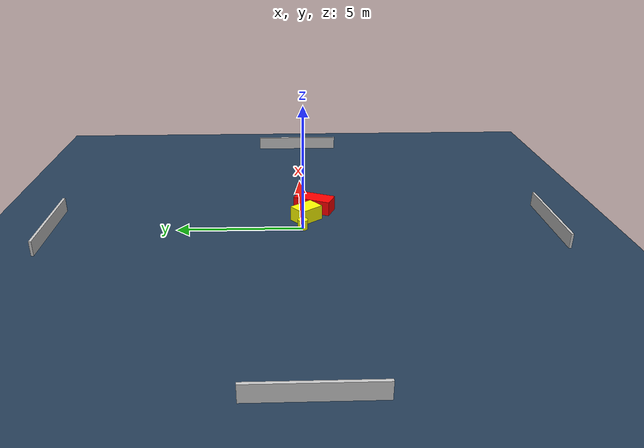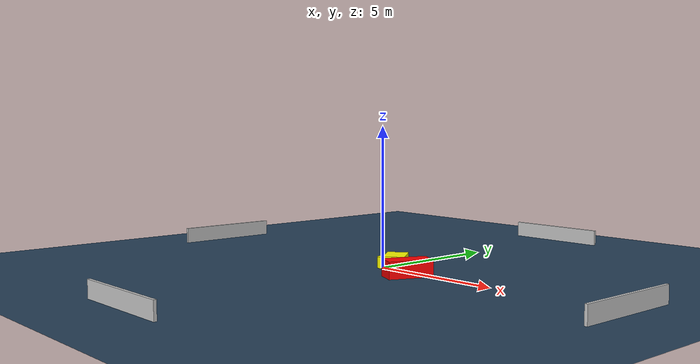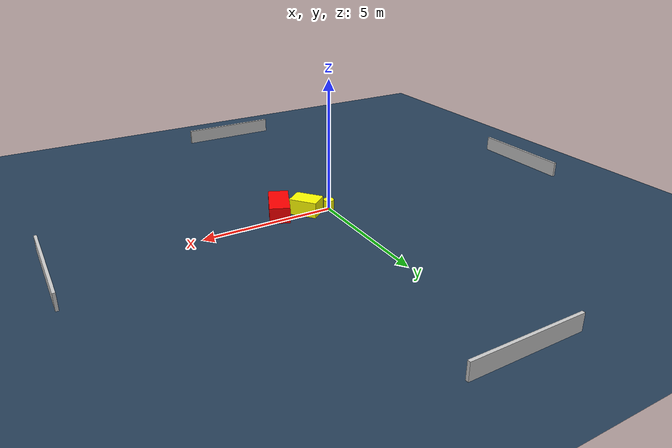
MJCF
<?xml version="1.0" ?>
<mujoco model="generated_environment">
  <option timestep="0.01" integrator="RK4" cone="elliptic"/>
  <default>
    <geom density="1"/>
  </default>
  <asset>
    <texture builtin="gradient" height="3072" name="skybox" rgb1="0.3 0.5 0.7" rgb2="0 0 0" type="skybox" width="512"/>
    <texture builtin="checker" height="300" name="groundplane" rgb1="0.2 0.3 0.4" rgb2="0.1 0.2 0.3" type="2d" width="300"/>
    <material name="groundplane" reflectance="0.2" texrepeat="5 5" texture="groundplane"/>
  </asset>
  <worldbody>
    <light dir="0 0 -1" directional="true" pos="0 0 1.5"/>
    <geom condim="3" friction="0.5 0.005 0.001" material="groundplane" name="floor" pos="0 0 0" size="0 0 0.05" type="plane"/>
    <body name="walls">
      <geom name="wall_1" condim="4" pos="-10.0 0.0 0.3" rgba="0.800000011920929 0.800000011920929 0.800000011920929 1.0" size="0.05 2.0 0.3" type="box"/>
      <geom name="wall_2" condim="4" pos="10.0 0.0 0.3" rgba="0.800000011920929 0.800000011920929 0.800000011920929 1.0" size="0.05 2.0 0.3" type="box"/>
      <geom name="wall_3" condim="4" pos="0.0 -10.0 0.3" rgba="0.800000011920929 0.800000011920929 0.800000011920929 1.0" size="2.0 0.05 0.3" type="box"/>
      <geom name="wall_4" condim="4" pos="0.0 10.0 0.3" rgba="0.800000011920929 0.800000011920929 0.800000011920929 1.0" size="2.0 0.05 0.3" type="box"/>
    </body>
    <body name="robot">
      <joint name="joint_x" type="slide" pos="0 0 0" axis="1 0 0"/>
      <joint name="joint_y" type="slide" pos="0 0 0" axis="0 1 0"/>
      <geom name="robot" type="cylinder" pos="0.0 0.0 0.2" size="0.2 0.2 0.0" mass="5.0" friction="1.0 0.005 0.0001" condim="4" rgba="1.0 1.0 0.0 1.0"/>
    </body>
    <body name="obstacle_1_movable">
      <geom name="obstacle_1_movable" condim="4" pos="0.8643538542608965 -0.17181359935989288 0.3" euler="0 0 38.23252372404764" friction="0.0 0.005 0.001" rgba="1.0 1.0 0.0 1.0" size="0.37170012902918603 0.5290135570871273 0.3" type="box" mass="0.1"/>
      <joint type="free"/>
    </body>
    <body name="obstacle_2_static">
      <geom name="obstacle_2_static" condim="4" pos="1.8203953385571183 -0.5402861625307689 0.3" euler="0 0 66.44013197503878" friction="0.0 0.005 0.001" rgba="1.0 0.0 0.0 1.0" size="0.7927204719009635 0.37868921099183317 0.3" type="box"/>
    </body>
  </worldbody>
  <actuator>
    <motor name="actuator_x" joint="joint_x" gear="1" ctrlrange="-1 1"/>
    <motor name="actuator_y" joint="joint_y" gear="1" ctrlrange="-1 1"/>
  </actuator>
</mujoco>
